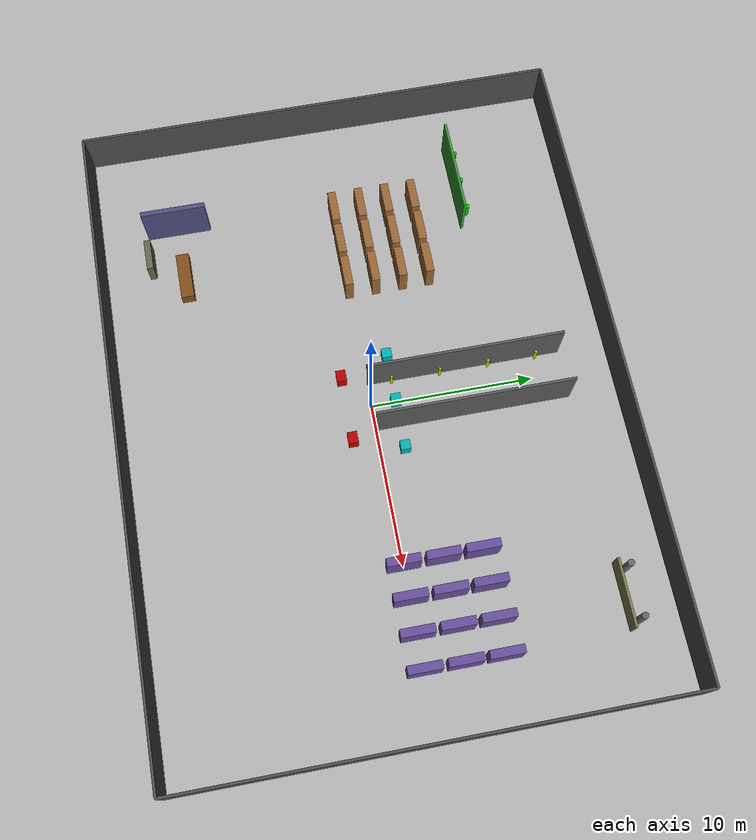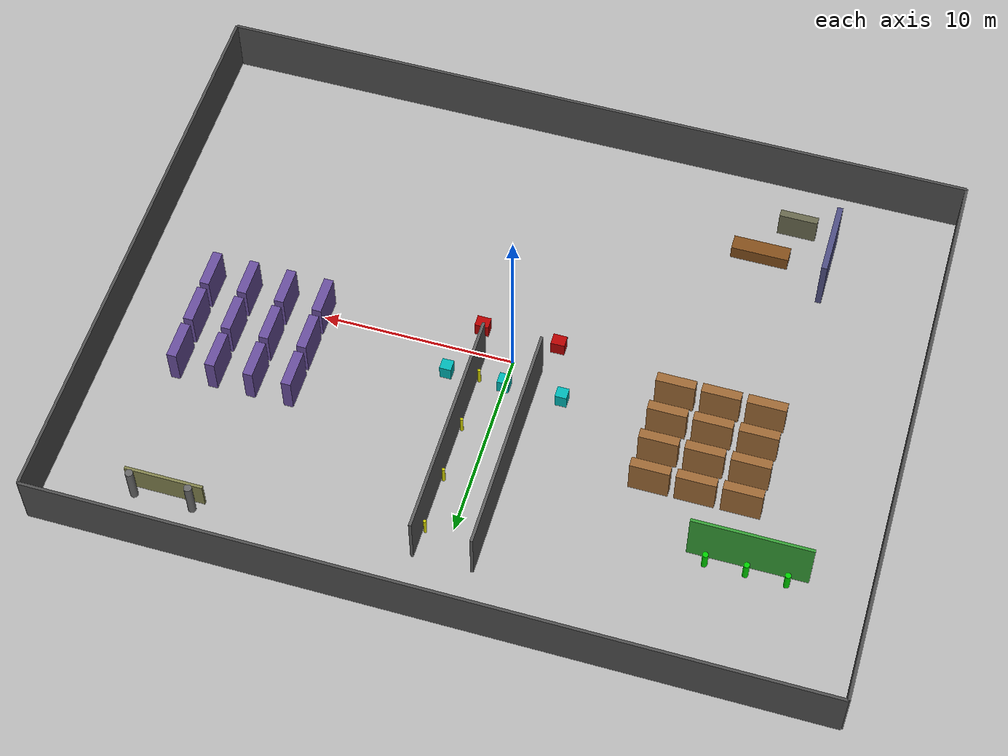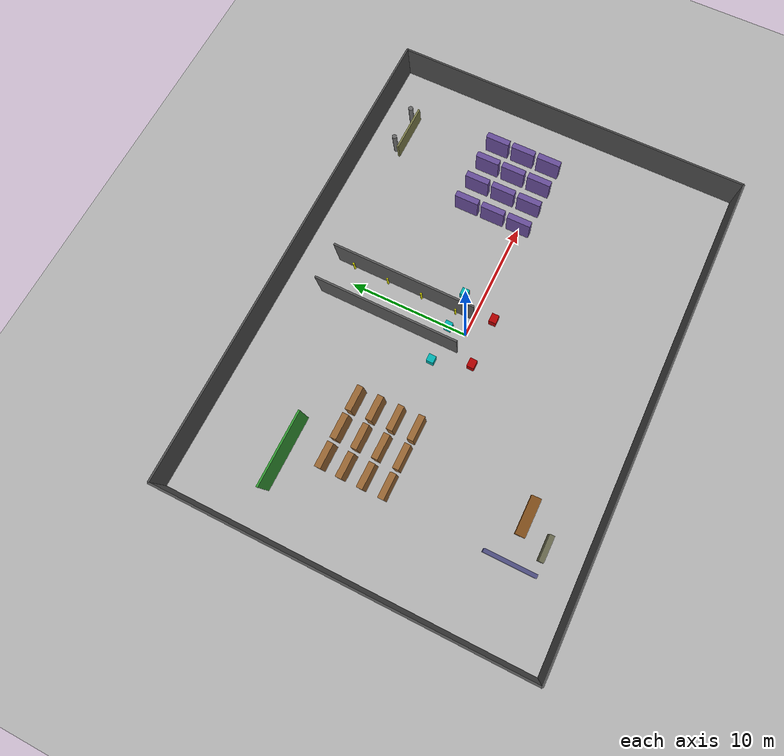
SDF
<?xml version="1.0" ?>
<sdf version="1.8">
  <world name="warehouse_distinct">
    <physics name="1ms" type="ode">
      <max_step_size>0.001</max_step_size>
      <real_time_factor>1.0</real_time_factor>
    </physics>

    <plugin filename="libignition-gazebo-physics-system.so" name="ignition::gazebo::systems::Physics"/>
    <plugin filename="libignition-gazebo-scene-broadcaster-system.so" name="ignition::gazebo::systems::SceneBroadcaster"/>
    <plugin filename="libignition-gazebo-sensors-system.so" name="ignition::gazebo::systems::Sensors"/>

    <light type="directional" name="sun">
      <cast_shadows>true</cast_shadows>
      <pose>0 0 10 0 0 0</pose>
      <diffuse>0.8 0.8 0.8 1</diffuse>
      <specular>0.2 0.2 0.2 1</specular>
      <direction>-0.5 0.1 -0.9</direction>
    </light>

    <!-- Ground plane -->
    <model name="ground_plane">
      <static>true</static>
      <link name="link">
        <collision name="collision">
          <geometry>
            <plane><normal>0 0 1</normal><size>40.0 30.0</size></plane>
          </geometry>
          <surface>
            <friction><ode><mu>0.8</mu><mu2>0.8</mu2></ode></friction>
          </surface>
        </collision>
        <visual name="visual">
          <geometry>
            <plane><normal>0 0 1</normal><size>40.0 30.0</size></plane>
          </geometry>
          <material>
            <ambient>0.7 0.7 0.7 1</ambient>
            <diffuse>0.7 0.7 0.7 1</diffuse>
          </material>
        </visual>
      </link>
    </model>

    <!-- Perimeter walls -->

    <model name="wall_north">
      <static>true</static>
      <pose>0 15.0 1.5 0 0 0</pose>
      <link name="link">
        <collision name="collision">
          <geometry><box><size>40.0 0.15 3.0</size></box></geometry>
        </collision>
        <visual name="visual">
          <geometry><box><size>40.0 0.15 3.0</size></box></geometry>
          <material>
            <ambient>0.3 0.3 0.3 1</ambient>
            <diffuse>0.3 0.3 0.3 1</diffuse>
          </material>
        </visual>
      </link>
    </model>

    <model name="wall_south">
      <static>true</static>
      <pose>0 -15.0 1.5 0 0 0</pose>
      <link name="link">
        <collision name="collision">
          <geometry><box><size>40.0 0.15 3.0</size></box></geometry>
        </collision>
        <visual name="visual">
          <geometry><box><size>40.0 0.15 3.0</size></box></geometry>
          <material>
            <ambient>0.3 0.3 0.3 1</ambient>
            <diffuse>0.3 0.3 0.3 1</diffuse>
          </material>
        </visual>
      </link>
    </model>

    <model name="wall_east">
      <static>true</static>
      <pose>20.0 0 1.5 0 0 0</pose>
      <link name="link">
        <collision name="collision">
          <geometry><box><size>0.15 30.0 3.0</size></box></geometry>
        </collision>
        <visual name="visual">
          <geometry><box><size>0.15 30.0 3.0</size></box></geometry>
          <material>
            <ambient>0.3 0.3 0.3 1</ambient>
            <diffuse>0.3 0.3 0.3 1</diffuse>
          </material>
        </visual>
      </link>
    </model>

    <model name="wall_west">
      <static>true</static>
      <pose>-20.0 0 1.5 0 0 0</pose>
      <link name="link">
        <collision name="collision">
          <geometry><box><size>0.15 30.0 3.0</size></box></geometry>
        </collision>
        <visual name="visual">
          <geometry><box><size>0.15 30.0 3.0</size></box></geometry>
          <material>
            <ambient>0.3 0.3 0.3 1</ambient>
            <diffuse>0.3 0.3 0.3 1</diffuse>
          </material>
        </visual>
      </link>
    </model>

    <!-- Zone geometry -->

    <model name="charge_back_wall">
      <static>true</static>
      <pose>-14.0 8.0 1.5 0 0 0</pose>
      <link name="link">
        <collision name="collision">
          <geometry><box><size>6.0 0.15 3.0</size></box></geometry>
        </collision>
        <visual name="visual">
          <geometry><box><size>6.0 0.15 3.0</size></box></geometry>
          <material>
            <ambient>0.2 0.6 0.2 1</ambient>
            <diffuse>0.2 0.6 0.2 1</diffuse>
          </material>
        </visual>
      </link>
    </model>

    <model name="charger_pillar_0">
      <static>true</static>
      <pose>-16.0 8.5 0.5 0 0 0</pose>
      <link name="link">
        <collision name="collision">
          <geometry><cylinder><radius>0.15</radius><length>1.0</length></cylinder></geometry>
        </collision>
        <visual name="visual">
          <geometry><cylinder><radius>0.15</radius><length>1.0</length></cylinder></geometry>
          <material>
            <ambient>0.0 0.8 0.0 1</ambient>
            <diffuse>0.0 0.8 0.0 1</diffuse>
          </material>
        </visual>
      </link>
    </model>

    <model name="charger_pillar_1">
      <static>true</static>
      <pose>-14.0 8.5 0.5 0 0 0</pose>
      <link name="link">
        <collision name="collision">
          <geometry><cylinder><radius>0.15</radius><length>1.0</length></cylinder></geometry>
        </collision>
        <visual name="visual">
          <geometry><cylinder><radius>0.15</radius><length>1.0</length></cylinder></geometry>
          <material>
            <ambient>0.0 0.8 0.0 1</ambient>
            <diffuse>0.0 0.8 0.0 1</diffuse>
          </material>
        </visual>
      </link>
    </model>

    <model name="charger_pillar_2">
      <static>true</static>
      <pose>-12.0 8.5 0.5 0 0 0</pose>
      <link name="link">
        <collision name="collision">
          <geometry><cylinder><radius>0.15</radius><length>1.0</length></cylinder></geometry>
        </collision>
        <visual name="visual">
          <geometry><cylinder><radius>0.15</radius><length>1.0</length></cylinder></geometry>
          <material>
            <ambient>0.0 0.8 0.0 1</ambient>
            <diffuse>0.0 0.8 0.0 1</diffuse>
          </material>
        </visual>
      </link>
    </model>

    <model name="shelf_a_0_0">
      <static>true</static>
      <pose>-13.0 0.0 1.0 0 0 0</pose>
      <link name="link">
        <collision name="collision">
          <geometry><box><size>2.0 0.5 2.0</size></box></geometry>
        </collision>
        <visual name="visual">
          <geometry><box><size>2.0 0.5 2.0</size></box></geometry>
          <material>
            <ambient>0.6 0.4 0.2 1</ambient>
            <diffuse>0.6 0.4 0.2 1</diffuse>
          </material>
        </visual>
      </link>
    </model>

    <model name="shelf_a_0_1">
      <static>true</static>
      <pose>-10.7 0.0 1.0 0 0 0</pose>
      <link name="link">
        <collision name="collision">
          <geometry><box><size>2.0 0.5 2.0</size></box></geometry>
        </collision>
        <visual name="visual">
          <geometry><box><size>2.0 0.5 2.0</size></box></geometry>
          <material>
            <ambient>0.6 0.4 0.2 1</ambient>
            <diffuse>0.6 0.4 0.2 1</diffuse>
          </material>
        </visual>
      </link>
    </model>

    <model name="shelf_a_0_2">
      <static>true</static>
      <pose>-8.4 0.0 1.0 0 0 0</pose>
      <link name="link">
        <collision name="collision">
          <geometry><box><size>2.0 0.5 2.0</size></box></geometry>
        </collision>
        <visual name="visual">
          <geometry><box><size>2.0 0.5 2.0</size></box></geometry>
          <material>
            <ambient>0.6 0.4 0.2 1</ambient>
            <diffuse>0.6 0.4 0.2 1</diffuse>
          </material>
        </visual>
      </link>
    </model>

    <model name="shelf_a_1_0">
      <static>true</static>
      <pose>-13.0 1.7 1.0 0 0 0</pose>
      <link name="link">
        <collision name="collision">
          <geometry><box><size>2.0 0.5 2.0</size></box></geometry>
        </collision>
        <visual name="visual">
          <geometry><box><size>2.0 0.5 2.0</size></box></geometry>
          <material>
            <ambient>0.6 0.4 0.2 1</ambient>
            <diffuse>0.6 0.4 0.2 1</diffuse>
          </material>
        </visual>
      </link>
    </model>

    <model name="shelf_a_1_1">
      <static>true</static>
      <pose>-10.7 1.7 1.0 0 0 0</pose>
      <link name="link">
        <collision name="collision">
          <geometry><box><size>2.0 0.5 2.0</size></box></geometry>
        </collision>
        <visual name="visual">
          <geometry><box><size>2.0 0.5 2.0</size></box></geometry>
          <material>
            <ambient>0.6 0.4 0.2 1</ambient>
            <diffuse>0.6 0.4 0.2 1</diffuse>
          </material>
        </visual>
      </link>
    </model>

    <model name="shelf_a_1_2">
      <static>true</static>
      <pose>-8.4 1.7 1.0 0 0 0</pose>
      <link name="link">
        <collision name="collision">
          <geometry><box><size>2.0 0.5 2.0</size></box></geometry>
        </collision>
        <visual name="visual">
          <geometry><box><size>2.0 0.5 2.0</size></box></geometry>
          <material>
            <ambient>0.6 0.4 0.2 1</ambient>
            <diffuse>0.6 0.4 0.2 1</diffuse>
          </material>
        </visual>
      </link>
    </model>

    <model name="shelf_a_2_0">
      <static>true</static>
      <pose>-13.0 3.4 1.0 0 0 0</pose>
      <link name="link">
        <collision name="collision">
          <geometry><box><size>2.0 0.5 2.0</size></box></geometry>
        </collision>
        <visual name="visual">
          <geometry><box><size>2.0 0.5 2.0</size></box></geometry>
          <material>
            <ambient>0.6 0.4 0.2 1</ambient>
            <diffuse>0.6 0.4 0.2 1</diffuse>
          </material>
        </visual>
      </link>
    </model>

    <model name="shelf_a_2_1">
      <static>true</static>
      <pose>-10.7 3.4 1.0 0 0 0</pose>
      <link name="link">
        <collision name="collision">
          <geometry><box><size>2.0 0.5 2.0</size></box></geometry>
        </collision>
        <visual name="visual">
          <geometry><box><size>2.0 0.5 2.0</size></box></geometry>
          <material>
            <ambient>0.6 0.4 0.2 1</ambient>
            <diffuse>0.6 0.4 0.2 1</diffuse>
          </material>
        </visual>
      </link>
    </model>

    <model name="shelf_a_2_2">
      <static>true</static>
      <pose>-8.4 3.4 1.0 0 0 0</pose>
      <link name="link">
        <collision name="collision">
          <geometry><box><size>2.0 0.5 2.0</size></box></geometry>
        </collision>
        <visual name="visual">
          <geometry><box><size>2.0 0.5 2.0</size></box></geometry>
          <material>
            <ambient>0.6 0.4 0.2 1</ambient>
            <diffuse>0.6 0.4 0.2 1</diffuse>
          </material>
        </visual>
      </link>
    </model>

    <model name="shelf_a_3_0">
      <static>true</static>
      <pose>-13.0 5.1 1.0 0 0 0</pose>
      <link name="link">
        <collision name="collision">
          <geometry><box><size>2.0 0.5 2.0</size></box></geometry>
        </collision>
        <visual name="visual">
          <geometry><box><size>2.0 0.5 2.0</size></box></geometry>
          <material>
            <ambient>0.6 0.4 0.2 1</ambient>
            <diffuse>0.6 0.4 0.2 1</diffuse>
          </material>
        </visual>
      </link>
    </model>

    <model name="shelf_a_3_1">
      <static>true</static>
      <pose>-10.7 5.1 1.0 0 0 0</pose>
      <link name="link">
        <collision name="collision">
          <geometry><box><size>2.0 0.5 2.0</size></box></geometry>
        </collision>
        <visual name="visual">
          <geometry><box><size>2.0 0.5 2.0</size></box></geometry>
          <material>
            <ambient>0.6 0.4 0.2 1</ambient>
            <diffuse>0.6 0.4 0.2 1</diffuse>
          </material>
        </visual>
      </link>
    </model>

    <model name="shelf_a_3_2">
      <static>true</static>
      <pose>-8.4 5.1 1.0 0 0 0</pose>
      <link name="link">
        <collision name="collision">
          <geometry><box><size>2.0 0.5 2.0</size></box></geometry>
        </collision>
        <visual name="visual">
          <geometry><box><size>2.0 0.5 2.0</size></box></geometry>
          <material>
            <ambient>0.6 0.4 0.2 1</ambient>
            <diffuse>0.6 0.4 0.2 1</diffuse>
          </material>
        </visual>
      </link>
    </model>

    <model name="shelf_b_0_0">
      <static>true</static>
      <pose>10.0 0.0 1.0 0 0 0</pose>
      <link name="link">
        <collision name="collision">
          <geometry><box><size>0.5 2.0 2.0</size></box></geometry>
        </collision>
        <visual name="visual">
          <geometry><box><size>0.5 2.0 2.0</size></box></geometry>
          <material>
            <ambient>0.4 0.3 0.6 1</ambient>
            <diffuse>0.4 0.3 0.6 1</diffuse>
          </material>
        </visual>
      </link>
    </model>

    <model name="shelf_b_0_1">
      <static>true</static>
      <pose>10.0 2.3 1.0 0 0 0</pose>
      <link name="link">
        <collision name="collision">
          <geometry><box><size>0.5 2.0 2.0</size></box></geometry>
        </collision>
        <visual name="visual">
          <geometry><box><size>0.5 2.0 2.0</size></box></geometry>
          <material>
            <ambient>0.4 0.3 0.6 1</ambient>
            <diffuse>0.4 0.3 0.6 1</diffuse>
          </material>
        </visual>
      </link>
    </model>

    <model name="shelf_b_0_2">
      <static>true</static>
      <pose>10.0 4.6 1.0 0 0 0</pose>
      <link name="link">
        <collision name="collision">
          <geometry><box><size>0.5 2.0 2.0</size></box></geometry>
        </collision>
        <visual name="visual">
          <geometry><box><size>0.5 2.0 2.0</size></box></geometry>
          <material>
            <ambient>0.4 0.3 0.6 1</ambient>
            <diffuse>0.4 0.3 0.6 1</diffuse>
          </material>
        </visual>
      </link>
    </model>

    <model name="shelf_b_1_0">
      <static>true</static>
      <pose>12.0 0.0 1.0 0 0 0</pose>
      <link name="link">
        <collision name="collision">
          <geometry><box><size>0.5 2.0 2.0</size></box></geometry>
        </collision>
        <visual name="visual">
          <geometry><box><size>0.5 2.0 2.0</size></box></geometry>
          <material>
            <ambient>0.4 0.3 0.6 1</ambient>
            <diffuse>0.4 0.3 0.6 1</diffuse>
          </material>
        </visual>
      </link>
    </model>

    <model name="shelf_b_1_1">
      <static>true</static>
      <pose>12.0 2.3 1.0 0 0 0</pose>
      <link name="link">
        <collision name="collision">
          <geometry><box><size>0.5 2.0 2.0</size></box></geometry>
        </collision>
        <visual name="visual">
          <geometry><box><size>0.5 2.0 2.0</size></box></geometry>
          <material>
            <ambient>0.4 0.3 0.6 1</ambient>
            <diffuse>0.4 0.3 0.6 1</diffuse>
          </material>
        </visual>
      </link>
    </model>

    <model name="shelf_b_1_2">
      <static>true</static>
      <pose>12.0 4.6 1.0 0 0 0</pose>
      <link name="link">
        <collision name="collision">
          <geometry><box><size>0.5 2.0 2.0</size></box></geometry>
        </collision>
        <visual name="visual">
          <geometry><box><size>0.5 2.0 2.0</size></box></geometry>
          <material>
            <ambient>0.4 0.3 0.6 1</ambient>
            <diffuse>0.4 0.3 0.6 1</diffuse>
          </material>
        </visual>
      </link>
    </model>

    <model name="shelf_b_2_0">
      <static>true</static>
      <pose>14.0 0.0 1.0 0 0 0</pose>
      <link name="link">
        <collision name="collision">
          <geometry><box><size>0.5 2.0 2.0</size></box></geometry>
        </collision>
        <visual name="visual">
          <geometry><box><size>0.5 2.0 2.0</size></box></geometry>
          <material>
            <ambient>0.4 0.3 0.6 1</ambient>
            <diffuse>0.4 0.3 0.6 1</diffuse>
          </material>
        </visual>
      </link>
    </model>

    <model name="shelf_b_2_1">
      <static>true</static>
      <pose>14.0 2.3 1.0 0 0 0</pose>
      <link name="link">
        <collision name="collision">
          <geometry><box><size>0.5 2.0 2.0</size></box></geometry>
        </collision>
        <visual name="visual">
          <geometry><box><size>0.5 2.0 2.0</size></box></geometry>
          <material>
            <ambient>0.4 0.3 0.6 1</ambient>
            <diffuse>0.4 0.3 0.6 1</diffuse>
          </material>
        </visual>
      </link>
    </model>

    <model name="shelf_b_2_2">
      <static>true</static>
      <pose>14.0 4.6 1.0 0 0 0</pose>
      <link name="link">
        <collision name="collision">
          <geometry><box><size>0.5 2.0 2.0</size></box></geometry>
        </collision>
        <visual name="visual">
          <geometry><box><size>0.5 2.0 2.0</size></box></geometry>
          <material>
            <ambient>0.4 0.3 0.6 1</ambient>
            <diffuse>0.4 0.3 0.6 1</diffuse>
          </material>
        </visual>
      </link>
    </model>

    <model name="shelf_b_3_0">
      <static>true</static>
      <pose>16.0 0.0 1.0 0 0 0</pose>
      <link name="link">
        <collision name="collision">
          <geometry><box><size>0.5 2.0 2.0</size></box></geometry>
        </collision>
        <visual name="visual">
          <geometry><box><size>0.5 2.0 2.0</size></box></geometry>
          <material>
            <ambient>0.4 0.3 0.6 1</ambient>
            <diffuse>0.4 0.3 0.6 1</diffuse>
          </material>
        </visual>
      </link>
    </model>

    <model name="shelf_b_3_1">
      <static>true</static>
      <pose>16.0 2.3 1.0 0 0 0</pose>
      <link name="link">
        <collision name="collision">
          <geometry><box><size>0.5 2.0 2.0</size></box></geometry>
        </collision>
        <visual name="visual">
          <geometry><box><size>0.5 2.0 2.0</size></box></geometry>
          <material>
            <ambient>0.4 0.3 0.6 1</ambient>
            <diffuse>0.4 0.3 0.6 1</diffuse>
          </material>
        </visual>
      </link>
    </model>

    <model name="shelf_b_3_2">
      <static>true</static>
      <pose>16.0 4.6 1.0 0 0 0</pose>
      <link name="link">
        <collision name="collision">
          <geometry><box><size>0.5 2.0 2.0</size></box></geometry>
        </collision>
        <visual name="visual">
          <geometry><box><size>0.5 2.0 2.0</size></box></geometry>
          <material>
            <ambient>0.4 0.3 0.6 1</ambient>
            <diffuse>0.4 0.3 0.6 1</diffuse>
          </material>
        </visual>
      </link>
    </model>

    <model name="pick_table_0">
      <static>true</static>
      <pose>-3.0 1.5 0.4 0 0 0</pose>
      <link name="link">
        <collision name="collision">
          <geometry><box><size>0.6 0.6 0.8</size></box></geometry>
        </collision>
        <visual name="visual">
          <geometry><box><size>0.6 0.6 0.8</size></box></geometry>
          <material>
            <ambient>0.0 0.7 0.7 1</ambient>
            <diffuse>0.0 0.7 0.7 1</diffuse>
          </material>
        </visual>
      </link>
    </model>

    <model name="pick_table_1">
      <static>true</static>
      <pose>0.0 1.5 0.4 0 0 0</pose>
      <link name="link">
        <collision name="collision">
          <geometry><box><size>0.6 0.6 0.8</size></box></geometry>
        </collision>
        <visual name="visual">
          <geometry><box><size>0.6 0.6 0.8</size></box></geometry>
          <material>
            <ambient>0.0 0.7 0.7 1</ambient>
            <diffuse>0.0 0.7 0.7 1</diffuse>
          </material>
        </visual>
      </link>
    </model>

    <model name="pick_table_2">
      <static>true</static>
      <pose>3.0 1.5 0.4 0 0 0</pose>
      <link name="link">
        <collision name="collision">
          <geometry><box><size>0.6 0.6 0.8</size></box></geometry>
        </collision>
        <visual name="visual">
          <geometry><box><size>0.6 0.6 0.8</size></box></geometry>
          <material>
            <ambient>0.0 0.7 0.7 1</ambient>
            <diffuse>0.0 0.7 0.7 1</diffuse>
          </material>
        </visual>
      </link>
    </model>

    <model name="drop_table_0">
      <static>true</static>
      <pose>-2.0 -1.5 0.4 0 0 0</pose>
      <link name="link">
        <collision name="collision">
          <geometry><box><size>0.72 0.6 0.8</size></box></geometry>
        </collision>
        <visual name="visual">
          <geometry><box><size>0.72 0.6 0.8</size></box></geometry>
          <material>
            <ambient>0.7 0.0 0.0 1</ambient>
            <diffuse>0.7 0.0 0.0 1</diffuse>
          </material>
        </visual>
      </link>
    </model>

    <model name="drop_table_1">
      <static>true</static>
      <pose>2.0 -1.5 0.4 0 0 0</pose>
      <link name="link">
        <collision name="collision">
          <geometry><box><size>0.72 0.6 0.8</size></box></geometry>
        </collision>
        <visual name="visual">
          <geometry><box><size>0.72 0.6 0.8</size></box></geometry>
          <material>
            <ambient>0.7 0.0 0.0 1</ambient>
            <diffuse>0.7 0.0 0.0 1</diffuse>
          </material>
        </visual>
      </link>
    </model>

    <model name="corridor_wall_left">
      <static>true</static>
      <pose>-1.5 6.0 1.5 0 0 0</pose>
      <link name="link">
        <collision name="collision">
          <geometry><box><size>0.15 12.0 3.0</size></box></geometry>
        </collision>
        <visual name="visual">
          <geometry><box><size>0.15 12.0 3.0</size></box></geometry>
          <material>
            <ambient>0.35 0.35 0.35 1</ambient>
            <diffuse>0.35 0.35 0.35 1</diffuse>
          </material>
        </visual>
      </link>
    </model>

    <model name="corridor_wall_right">
      <static>true</static>
      <pose>1.5 6.0 1.5 0 0 0</pose>
      <link name="link">
        <collision name="collision">
          <geometry><box><size>0.15 12.0 3.0</size></box></geometry>
        </collision>
        <visual name="visual">
          <geometry><box><size>0.15 12.0 3.0</size></box></geometry>
          <material>
            <ambient>0.35 0.35 0.35 1</ambient>
            <diffuse>0.35 0.35 0.35 1</diffuse>
          </material>
        </visual>
      </link>
    </model>

    <model name="marker_left_0">
      <static>true</static>
      <pose>-1.3 1.5 0.5 0 0 0</pose>
      <link name="link">
        <collision name="collision">
          <geometry><cylinder><radius>0.08</radius><length>1.0</length></cylinder></geometry>
        </collision>
        <visual name="visual">
          <geometry><cylinder><radius>0.08</radius><length>1.0</length></cylinder></geometry>
          <material>
            <ambient>0.8 0.8 0.0 1</ambient>
            <diffuse>0.8 0.8 0.0 1</diffuse>
          </material>
        </visual>
      </link>
    </model>

    <model name="marker_right_0">
      <static>true</static>
      <pose>1.3 1.5 0.5 0 0 0</pose>
      <link name="link">
        <collision name="collision">
          <geometry><cylinder><radius>0.08</radius><length>1.0</length></cylinder></geometry>
        </collision>
        <visual name="visual">
          <geometry><cylinder><radius>0.08</radius><length>1.0</length></cylinder></geometry>
          <material>
            <ambient>0.8 0.8 0.0 1</ambient>
            <diffuse>0.8 0.8 0.0 1</diffuse>
          </material>
        </visual>
      </link>
    </model>

    <model name="marker_left_1">
      <static>true</static>
      <pose>-1.3 4.5 0.5 0 0 0</pose>
      <link name="link">
        <collision name="collision">
          <geometry><cylinder><radius>0.08</radius><length>1.0</length></cylinder></geometry>
        </collision>
        <visual name="visual">
          <geometry><cylinder><radius>0.08</radius><length>1.0</length></cylinder></geometry>
          <material>
            <ambient>0.8 0.8 0.0 1</ambient>
            <diffuse>0.8 0.8 0.0 1</diffuse>
          </material>
        </visual>
      </link>
    </model>

    <model name="marker_right_1">
      <static>true</static>
      <pose>1.3 4.5 0.5 0 0 0</pose>
      <link name="link">
        <collision name="collision">
          <geometry><cylinder><radius>0.08</radius><length>1.0</length></cylinder></geometry>
        </collision>
        <visual name="visual">
          <geometry><cylinder><radius>0.08</radius><length>1.0</length></cylinder></geometry>
          <material>
            <ambient>0.8 0.8 0.0 1</ambient>
            <diffuse>0.8 0.8 0.0 1</diffuse>
          </material>
        </visual>
      </link>
    </model>

    <model name="marker_left_2">
      <static>true</static>
      <pose>-1.3 7.5 0.5 0 0 0</pose>
      <link name="link">
        <collision name="collision">
          <geometry><cylinder><radius>0.08</radius><length>1.0</length></cylinder></geometry>
        </collision>
        <visual name="visual">
          <geometry><cylinder><radius>0.08</radius><length>1.0</length></cylinder></geometry>
          <material>
            <ambient>0.8 0.8 0.0 1</ambient>
            <diffuse>0.8 0.8 0.0 1</diffuse>
          </material>
        </visual>
      </link>
    </model>

    <model name="marker_right_2">
      <static>true</static>
      <pose>1.3 7.5 0.5 0 0 0</pose>
      <link name="link">
        <collision name="collision">
          <geometry><cylinder><radius>0.08</radius><length>1.0</length></cylinder></geometry>
        </collision>
        <visual name="visual">
          <geometry><cylinder><radius>0.08</radius><length>1.0</length></cylinder></geometry>
          <material>
            <ambient>0.8 0.8 0.0 1</ambient>
            <diffuse>0.8 0.8 0.0 1</diffuse>
          </material>
        </visual>
      </link>
    </model>

    <model name="marker_left_3">
      <static>true</static>
      <pose>-1.3 10.5 0.5 0 0 0</pose>
      <link name="link">
        <collision name="collision">
          <geometry><cylinder><radius>0.08</radius><length>1.0</length></cylinder></geometry>
        </collision>
        <visual name="visual">
          <geometry><cylinder><radius>0.08</radius><length>1.0</length></cylinder></geometry>
          <material>
            <ambient>0.8 0.8 0.0 1</ambient>
            <diffuse>0.8 0.8 0.0 1</diffuse>
          </material>
        </visual>
      </link>
    </model>

    <model name="marker_right_3">
      <static>true</static>
      <pose>1.3 10.5 0.5 0 0 0</pose>
      <link name="link">
        <collision name="collision">
          <geometry><cylinder><radius>0.08</radius><length>1.0</length></cylinder></geometry>
        </collision>
        <visual name="visual">
          <geometry><cylinder><radius>0.08</radius><length>1.0</length></cylinder></geometry>
          <material>
            <ambient>0.8 0.8 0.0 1</ambient>
            <diffuse>0.8 0.8 0.0 1</diffuse>
          </material>
        </visual>
      </link>
    </model>

    <model name="staging_halfwall">
      <static>true</static>
      <pose>14.0 12.0 0.75 0 0 0</pose>
      <link name="link">
        <collision name="collision">
          <geometry><box><size>4.0 0.15 1.5</size></box></geometry>
        </collision>
        <visual name="visual">
          <geometry><box><size>4.0 0.15 1.5</size></box></geometry>
          <material>
            <ambient>0.5 0.5 0.3 1</ambient>
            <diffuse>0.5 0.5 0.3 1</diffuse>
          </material>
        </visual>
      </link>
    </model>

    <model name="dock_pillar_left">
      <static>true</static>
      <pose>12.5 12.5 1.0 0 0 0</pose>
      <link name="link">
        <collision name="collision">
          <geometry><cylinder><radius>0.2</radius><length>2.0</length></cylinder></geometry>
        </collision>
        <visual name="visual">
          <geometry><cylinder><radius>0.2</radius><length>2.0</length></cylinder></geometry>
          <material>
            <ambient>0.4 0.4 0.4 1</ambient>
            <diffuse>0.4 0.4 0.4 1</diffuse>
          </material>
        </visual>
      </link>
    </model>

    <model name="dock_pillar_right">
      <static>true</static>
      <pose>15.5 12.5 1.0 0 0 0</pose>
      <link name="link">
        <collision name="collision">
          <geometry><cylinder><radius>0.2</radius><length>2.0</length></cylinder></geometry>
        </collision>
        <visual name="visual">
          <geometry><cylinder><radius>0.2</radius><length>2.0</length></cylinder></geometry>
          <material>
            <ambient>0.4 0.4 0.4 1</ambient>
            <diffuse>0.4 0.4 0.4 1</diffuse>
          </material>
        </visual>
      </link>
    </model>

    <model name="workbench">
      <static>true</static>
      <pose>-10.5 -10.0 0.4 0 0 0</pose>
      <link name="link">
        <collision name="collision">
          <geometry><box><size>3.0 0.8 0.8</size></box></geometry>
        </collision>
        <visual name="visual">
          <geometry><box><size>3.0 0.8 0.8</size></box></geometry>
          <material>
            <ambient>0.5 0.3 0.1 1</ambient>
            <diffuse>0.5 0.3 0.1 1</diffuse>
          </material>
        </visual>
      </link>
    </model>

    <model name="tool_rack">
      <static>true</static>
      <pose>-14.0 -10.0 1.5 0 0 0</pose>
      <link name="link">
        <collision name="collision">
          <geometry><box><size>0.3 4.0 3.0</size></box></geometry>
        </collision>
        <visual name="visual">
          <geometry><box><size>0.3 4.0 3.0</size></box></geometry>
          <material>
            <ambient>0.3 0.3 0.5 1</ambient>
            <diffuse>0.3 0.3 0.5 1</diffuse>
          </material>
        </visual>
      </link>
    </model>

    <model name="equipment">
      <static>true</static>
      <pose>-12.0 -12.0 0.75 0 0 0</pose>
      <link name="link">
        <collision name="collision">
          <geometry><box><size>2.0 0.4 1.5</size></box></geometry>
        </collision>
        <visual name="visual">
          <geometry><box><size>2.0 0.4 1.5</size></box></geometry>
          <material>
            <ambient>0.4 0.4 0.3 1</ambient>
            <diffuse>0.4 0.4 0.3 1</diffuse>
          </material>
        </visual>
      </link>
    </model>

  </world>
</sdf>
